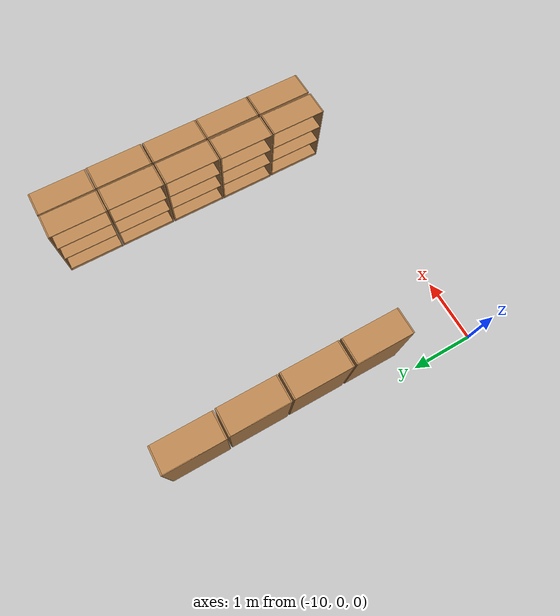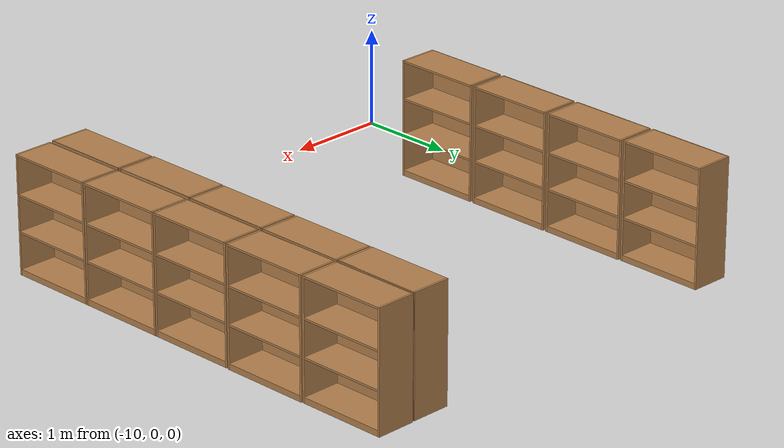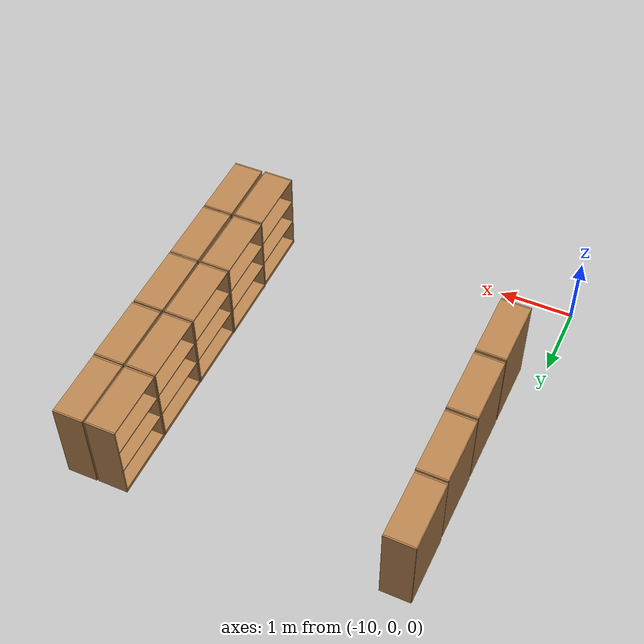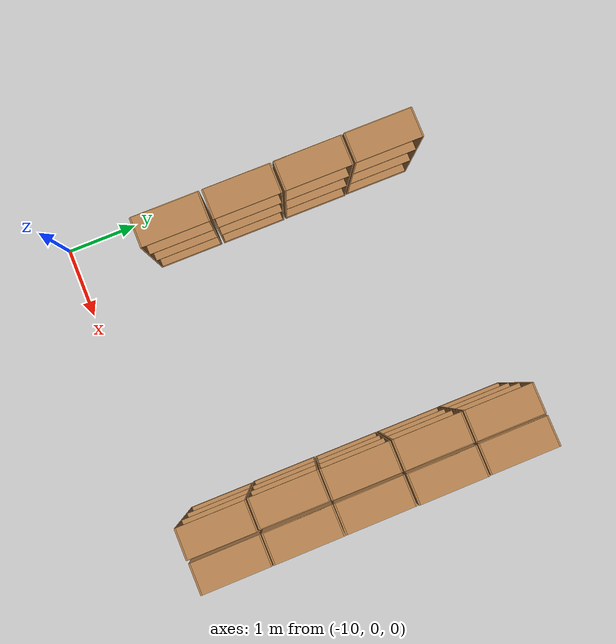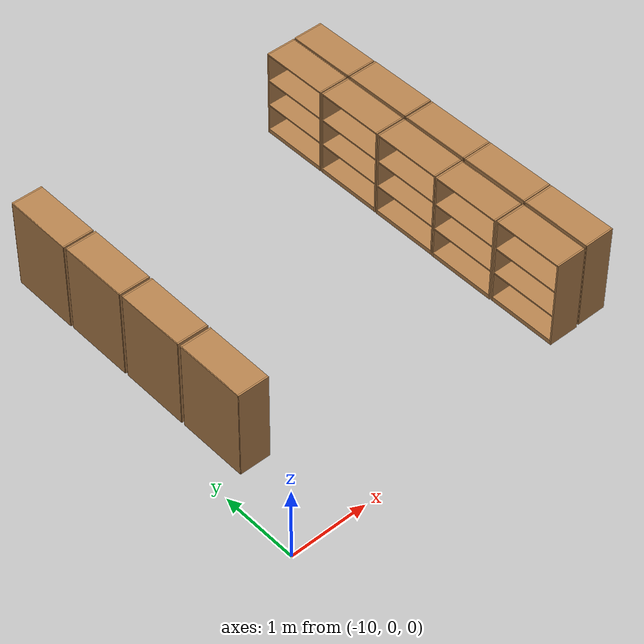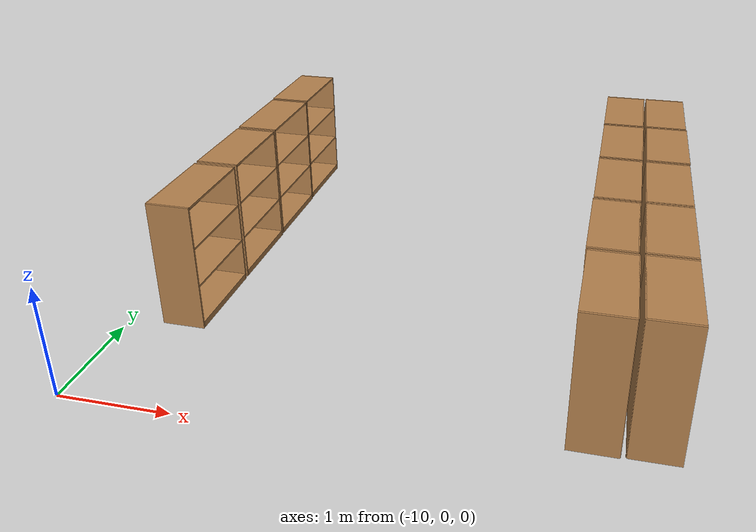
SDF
<sdf version="1.7">
 <world name="default">
  <model name="bookshelf_clone_0_clone_0_clone_clone_3">
   <static>1</static>
   <link name="link">
    <inertial><mass>1</mass></inertial>
    <collision name="back">
     <pose>0 0.005 0.6 0 -0 0</pose>
     <geometry><box><size>0.9 0.01 1.2</size></box></geometry>
    </collision>
    <visual name="visual1">
     <pose>0 0.005 0.6 0 -0 0</pose>
     <geometry><box><size>0.9 0.01 1.2</size></box></geometry>
     <material>
      <script><uri>file://media/materials/scripts/gazebo.material</uri><name>Gazebo/Wood</name></script>
     </material>
    </visual>
    <collision name="left_side">
     <pose>0.45 -0.195 0.6 0 -0 0</pose>
     <geometry><box><size>0.02 0.4 1.2</size></box></geometry>
    </collision>
    <visual name="visual2">
     <pose>0.45 -0.195 0.6 0 -0 0</pose>
     <geometry><box><size>0.02 0.4 1.2</size></box></geometry>
     <material>
      <script><uri>file://media/materials/scripts/gazebo.material</uri><name>Gazebo/Wood</name></script>
     </material>
    </visual>
    <collision name="right_side">
     <pose>-0.45 -0.195 0.6 0 -0 0</pose>
     <geometry><box><size>0.02 0.4 1.2</size></box></geometry>
    </collision>
    <visual name="visual3">
     <pose>-0.45 -0.195 0.6 0 -0 0</pose>
     <geometry><box><size>0.02 0.4 1.2</size></box></geometry>
     <material>
      <script><uri>file://media/materials/scripts/gazebo.material</uri><name>Gazebo/Wood</name></script>
     </material>
    </visual>
    <collision name="bottom">
     <pose>0 -0.195 0.03 0 -0 0</pose>
     <geometry><box><size>0.88 0.4 0.06</size></box></geometry>
    </collision>
    <visual name="visual4">
     <pose>0 -0.195 0.03 0 -0 0</pose>
     <geometry><box><size>0.88 0.4 0.06</size></box></geometry>
     <material>
      <script><uri>file://media/materials/scripts/gazebo.material</uri><name>Gazebo/Wood</name></script>
     </material>
    </visual>
    <collision name="top">
     <pose>0 -0.195 1.19 0 -0 0</pose>
     <geometry><box><size>0.88 0.4 0.02</size></box></geometry>
    </collision>
    <visual name="visual5">
     <pose>0 -0.195 1.19 0 -0 0</pose>
     <geometry><box><size>0.88 0.4 0.02</size></box></geometry>
     <material>
      <script><uri>file://media/materials/scripts/gazebo.material</uri><name>Gazebo/Wood</name></script>
     </material>
    </visual>
    <collision name="low_shelf">
     <pose>0 -0.195 0.43 0 -0 0</pose>
     <geometry><box><size>0.88 0.4 0.02</size></box></geometry>
    </collision>
    <visual name="visual6">
     <pose>0 -0.195 0.43 0 -0 0</pose>
     <geometry><box><size>0.88 0.4 0.02</size></box></geometry>
     <material>
      <script><uri>file://media/materials/scripts/gazebo.material</uri><name>Gazebo/Wood</name></script>
     </material>
    </visual>
    <collision name="high_shelf">
     <pose>0 -0.195 0.8 0 -0 0</pose>
     <geometry><box><size>0.88 0.4 0.02</size></box></geometry>
    </collision>
    <visual name="visual7">
     <pose>0 -0.195 0.8 0 -0 0</pose>
     <geometry><box><size>0.88 0.4 0.02</size></box></geometry>
     <material>
      <script><uri>file://media/materials/scripts/gazebo.material</uri><name>Gazebo/Wood</name></script>
     </material>
    </visual>
   </link>
   <pose>-9.67438 1.61126 0 0 -0 1.56663</pose>
  </model>
  <model name="bookshelf_clone_0_clone_0_clone_clone_4">
   <static>1</static>
   <link name="link">
    <inertial><mass>1</mass></inertial>
    <collision name="back">
     <pose>0 0.005 0.6 0 -0 0</pose>
     <geometry><box><size>0.9 0.01 1.2</size></box></geometry>
    </collision>
    <visual name="visual1">
     <pose>0 0.005 0.6 0 -0 0</pose>
     <geometry><box><size>0.9 0.01 1.2</size></box></geometry>
     <material>
      <script><uri>file://media/materials/scripts/gazebo.material</uri><name>Gazebo/Wood</name></script>
     </material>
    </visual>
    <collision name="left_side">
     <pose>0.45 -0.195 0.6 0 -0 0</pose>
     <geometry><box><size>0.02 0.4 1.2</size></box></geometry>
    </collision>
    <visual name="visual2">
     <pose>0.45 -0.195 0.6 0 -0 0</pose>
     <geometry><box><size>0.02 0.4 1.2</size></box></geometry>
     <material>
      <script><uri>file://media/materials/scripts/gazebo.material</uri><name>Gazebo/Wood</name></script>
     </material>
    </visual>
    <collision name="right_side">
     <pose>-0.45 -0.195 0.6 0 -0 0</pose>
     <geometry><box><size>0.02 0.4 1.2</size></box></geometry>
    </collision>
    <visual name="visual3">
     <pose>-0.45 -0.195 0.6 0 -0 0</pose>
     <geometry><box><size>0.02 0.4 1.2</size></box></geometry>
     <material>
      <script><uri>file://media/materials/scripts/gazebo.material</uri><name>Gazebo/Wood</name></script>
     </material>
    </visual>
    <collision name="bottom">
     <pose>0 -0.195 0.03 0 -0 0</pose>
     <geometry><box><size>0.88 0.4 0.06</size></box></geometry>
    </collision>
    <visual name="visual4">
     <pose>0 -0.195 0.03 0 -0 0</pose>
     <geometry><box><size>0.88 0.4 0.06</size></box></geometry>
     <material>
      <script><uri>file://media/materials/scripts/gazebo.material</uri><name>Gazebo/Wood</name></script>
     </material>
    </visual>
    <collision name="top">
     <pose>0 -0.195 1.19 0 -0 0</pose>
     <geometry><box><size>0.88 0.4 0.02</size></box></geometry>
    </collision>
    <visual name="visual5">
     <pose>0 -0.195 1.19 0 -0 0</pose>
     <geometry><box><size>0.88 0.4 0.02</size></box></geometry>
     <material>
      <script><uri>file://media/materials/scripts/gazebo.material</uri><name>Gazebo/Wood</name></script>
     </material>
    </visual>
    <collision name="low_shelf">
     <pose>0 -0.195 0.43 0 -0 0</pose>
     <geometry><box><size>0.88 0.4 0.02</size></box></geometry>
    </collision>
    <visual name="visual6">
     <pose>0 -0.195 0.43 0 -0 0</pose>
     <geometry><box><size>0.88 0.4 0.02</size></box></geometry>
     <material>
      <script><uri>file://media/materials/scripts/gazebo.material</uri><name>Gazebo/Wood</name></script>
     </material>
    </visual>
    <collision name="high_shelf">
     <pose>0 -0.195 0.8 0 -0 0</pose>
     <geometry><box><size>0.88 0.4 0.02</size></box></geometry>
    </collision>
    <visual name="visual7">
     <pose>0 -0.195 0.8 0 -0 0</pose>
     <geometry><box><size>0.88 0.4 0.02</size></box></geometry>
     <material>
      <script><uri>file://media/materials/scripts/gazebo.material</uri><name>Gazebo/Wood</name></script>
     </material>
    </visual>
   </link>
   <pose>-9.67202 2.56338 0 0 -0 1.56663</pose>
  </model>
  <model name="bookshelf_clone_0_clone_0_clone_clone_5">
   <static>1</static>
   <link name="link">
    <inertial><mass>1</mass></inertial>
    <collision name="back">
     <pose>0 0.005 0.6 0 -0 0</pose>
     <geometry><box><size>0.9 0.01 1.2</size></box></geometry>
    </collision>
    <visual name="visual1">
     <pose>0 0.005 0.6 0 -0 0</pose>
     <geometry><box><size>0.9 0.01 1.2</size></box></geometry>
     <material>
      <script><uri>file://media/materials/scripts/gazebo.material</uri><name>Gazebo/Wood</name></script>
     </material>
    </visual>
    <collision name="left_side">
     <pose>0.45 -0.195 0.6 0 -0 0</pose>
     <geometry><box><size>0.02 0.4 1.2</size></box></geometry>
    </collision>
    <visual name="visual2">
     <pose>0.45 -0.195 0.6 0 -0 0</pose>
     <geometry><box><size>0.02 0.4 1.2</size></box></geometry>
     <material>
      <script><uri>file://media/materials/scripts/gazebo.material</uri><name>Gazebo/Wood</name></script>
     </material>
    </visual>
    <collision name="right_side">
     <pose>-0.45 -0.195 0.6 0 -0 0</pose>
     <geometry><box><size>0.02 0.4 1.2</size></box></geometry>
    </collision>
    <visual name="visual3">
     <pose>-0.45 -0.195 0.6 0 -0 0</pose>
     <geometry><box><size>0.02 0.4 1.2</size></box></geometry>
     <material>
      <script><uri>file://media/materials/scripts/gazebo.material</uri><name>Gazebo/Wood</name></script>
     </material>
    </visual>
    <collision name="bottom">
     <pose>0 -0.195 0.03 0 -0 0</pose>
     <geometry><box><size>0.88 0.4 0.06</size></box></geometry>
    </collision>
    <visual name="visual4">
     <pose>0 -0.195 0.03 0 -0 0</pose>
     <geometry><box><size>0.88 0.4 0.06</size></box></geometry>
     <material>
      <script><uri>file://media/materials/scripts/gazebo.material</uri><name>Gazebo/Wood</name></script>
     </material>
    </visual>
    <collision name="top">
     <pose>0 -0.195 1.19 0 -0 0</pose>
     <geometry><box><size>0.88 0.4 0.02</size></box></geometry>
    </collision>
    <visual name="visual5">
     <pose>0 -0.195 1.19 0 -0 0</pose>
     <geometry><box><size>0.88 0.4 0.02</size></box></geometry>
     <material>
      <script><uri>file://media/materials/scripts/gazebo.material</uri><name>Gazebo/Wood</name></script>
     </material>
    </visual>
    <collision name="low_shelf">
     <pose>0 -0.195 0.43 0 -0 0</pose>
     <geometry><box><size>0.88 0.4 0.02</size></box></geometry>
    </collision>
    <visual name="visual6">
     <pose>0 -0.195 0.43 0 -0 0</pose>
     <geometry><box><size>0.88 0.4 0.02</size></box></geometry>
     <material>
      <script><uri>file://media/materials/scripts/gazebo.material</uri><name>Gazebo/Wood</name></script>
     </material>
    </visual>
    <collision name="high_shelf">
     <pose>0 -0.195 0.8 0 -0 0</pose>
     <geometry><box><size>0.88 0.4 0.02</size></box></geometry>
    </collision>
    <visual name="visual7">
     <pose>0 -0.195 0.8 0 -0 0</pose>
     <geometry><box><size>0.88 0.4 0.02</size></box></geometry>
     <material>
      <script><uri>file://media/materials/scripts/gazebo.material</uri><name>Gazebo/Wood</name></script>
     </material>
    </visual>
   </link>
   <pose>-9.67305 3.51023 0 0 -0 1.56663</pose>
  </model>
  <model name="bookshelf_clone_0_clone_0_clone_clone_6">
   <static>1</static>
   <link name="link">
    <inertial><mass>1</mass></inertial>
    <collision name="back">
     <pose>0 0.005 0.6 0 -0 0</pose>
     <geometry><box><size>0.9 0.01 1.2</size></box></geometry>
    </collision>
    <visual name="visual1">
     <pose>0 0.005 0.6 0 -0 0</pose>
     <geometry><box><size>0.9 0.01 1.2</size></box></geometry>
     <material>
      <script><uri>file://media/materials/scripts/gazebo.material</uri><name>Gazebo/Wood</name></script>
     </material>
    </visual>
    <collision name="left_side">
     <pose>0.45 -0.195 0.6 0 -0 0</pose>
     <geometry><box><size>0.02 0.4 1.2</size></box></geometry>
    </collision>
    <visual name="visual2">
     <pose>0.45 -0.195 0.6 0 -0 0</pose>
     <geometry><box><size>0.02 0.4 1.2</size></box></geometry>
     <material>
      <script><uri>file://media/materials/scripts/gazebo.material</uri><name>Gazebo/Wood</name></script>
     </material>
    </visual>
    <collision name="right_side">
     <pose>-0.45 -0.195 0.6 0 -0 0</pose>
     <geometry><box><size>0.02 0.4 1.2</size></box></geometry>
    </collision>
    <visual name="visual3">
     <pose>-0.45 -0.195 0.6 0 -0 0</pose>
     <geometry><box><size>0.02 0.4 1.2</size></box></geometry>
     <material>
      <script><uri>file://media/materials/scripts/gazebo.material</uri><name>Gazebo/Wood</name></script>
     </material>
    </visual>
    <collision name="bottom">
     <pose>0 -0.195 0.03 0 -0 0</pose>
     <geometry><box><size>0.88 0.4 0.06</size></box></geometry>
    </collision>
    <visual name="visual4">
     <pose>0 -0.195 0.03 0 -0 0</pose>
     <geometry><box><size>0.88 0.4 0.06</size></box></geometry>
     <material>
      <script><uri>file://media/materials/scripts/gazebo.material</uri><name>Gazebo/Wood</name></script>
     </material>
    </visual>
    <collision name="top">
     <pose>0 -0.195 1.19 0 -0 0</pose>
     <geometry><box><size>0.88 0.4 0.02</size></box></geometry>
    </collision>
    <visual name="visual5">
     <pose>0 -0.195 1.19 0 -0 0</pose>
     <geometry><box><size>0.88 0.4 0.02</size></box></geometry>
     <material>
      <script><uri>file://media/materials/scripts/gazebo.material</uri><name>Gazebo/Wood</name></script>
     </material>
    </visual>
    <collision name="low_shelf">
     <pose>0 -0.195 0.43 0 -0 0</pose>
     <geometry><box><size>0.88 0.4 0.02</size></box></geometry>
    </collision>
    <visual name="visual6">
     <pose>0 -0.195 0.43 0 -0 0</pose>
     <geometry><box><size>0.88 0.4 0.02</size></box></geometry>
     <material>
      <script><uri>file://media/materials/scripts/gazebo.material</uri><name>Gazebo/Wood</name></script>
     </material>
    </visual>
    <collision name="high_shelf">
     <pose>0 -0.195 0.8 0 -0 0</pose>
     <geometry><box><size>0.88 0.4 0.02</size></box></geometry>
    </collision>
    <visual name="visual7">
     <pose>0 -0.195 0.8 0 -0 0</pose>
     <geometry><box><size>0.88 0.4 0.02</size></box></geometry>
     <material>
      <script><uri>file://media/materials/scripts/gazebo.material</uri><name>Gazebo/Wood</name></script>
     </material>
    </visual>
   </link>
   <pose>-9.67749 4.45208 0 0 -0 1.56663</pose>
  </model>
  <model name="bookshelf_clone_2_clone_1">
   <static>1</static>
   <link name="link">
    <inertial><mass>1</mass></inertial>
    <collision name="back">
     <pose>0 0.005 0.6 0 -0 0</pose>
     <geometry><box><size>0.9 0.01 1.2</size></box></geometry>
    </collision>
    <visual name="visual1">
     <pose>0 0.005 0.6 0 -0 0</pose>
     <geometry><box><size>0.9 0.01 1.2</size></box></geometry>
     <material>
      <script><uri>file://media/materials/scripts/gazebo.material</uri><name>Gazebo/Wood</name></script>
     </material>
    </visual>
    <collision name="left_side">
     <pose>0.45 -0.195 0.6 0 -0 0</pose>
     <geometry><box><size>0.02 0.4 1.2</size></box></geometry>
    </collision>
    <visual name="visual2">
     <pose>0.45 -0.195 0.6 0 -0 0</pose>
     <geometry><box><size>0.02 0.4 1.2</size></box></geometry>
     <material>
      <script><uri>file://media/materials/scripts/gazebo.material</uri><name>Gazebo/Wood</name></script>
     </material>
    </visual>
    <collision name="right_side">
     <pose>-0.45 -0.195 0.6 0 -0 0</pose>
     <geometry><box><size>0.02 0.4 1.2</size></box></geometry>
    </collision>
    <visual name="visual3">
     <pose>-0.45 -0.195 0.6 0 -0 0</pose>
     <geometry><box><size>0.02 0.4 1.2</size></box></geometry>
     <material>
      <script><uri>file://media/materials/scripts/gazebo.material</uri><name>Gazebo/Wood</name></script>
     </material>
    </visual>
    <collision name="bottom">
     <pose>0 -0.195 0.03 0 -0 0</pose>
     <geometry><box><size>0.88 0.4 0.06</size></box></geometry>
    </collision>
    <visual name="visual4">
     <pose>0 -0.195 0.03 0 -0 0</pose>
     <geometry><box><size>0.88 0.4 0.06</size></box></geometry>
     <material>
      <script><uri>file://media/materials/scripts/gazebo.material</uri><name>Gazebo/Wood</name></script>
     </material>
    </visual>
    <collision name="top">
     <pose>0 -0.195 1.19 0 -0 0</pose>
     <geometry><box><size>0.88 0.4 0.02</size></box></geometry>
    </collision>
    <visual name="visual5">
     <pose>0 -0.195 1.19 0 -0 0</pose>
     <geometry><box><size>0.88 0.4 0.02</size></box></geometry>
     <material>
      <script><uri>file://media/materials/scripts/gazebo.material</uri><name>Gazebo/Wood</name></script>
     </material>
    </visual>
    <collision name="low_shelf">
     <pose>0 -0.195 0.43 0 -0 0</pose>
     <geometry><box><size>0.88 0.4 0.02</size></box></geometry>
    </collision>
    <visual name="visual6">
     <pose>0 -0.195 0.43 0 -0 0</pose>
     <geometry><box><size>0.88 0.4 0.02</size></box></geometry>
     <material>
      <script><uri>file://media/materials/scripts/gazebo.material</uri><name>Gazebo/Wood</name></script>
     </material>
    </visual>
    <collision name="high_shelf">
     <pose>0 -0.195 0.8 0 -0 0</pose>
     <geometry><box><size>0.88 0.4 0.02</size></box></geometry>
    </collision>
    <visual name="visual7">
     <pose>0 -0.195 0.8 0 -0 0</pose>
     <geometry><box><size>0.88 0.4 0.02</size></box></geometry>
     <material>
      <script><uri>file://media/materials/scripts/gazebo.material</uri><name>Gazebo/Wood</name></script>
     </material>
    </visual>
   </link>
   <pose>-5.58759 0.767929 0 0 0 -1.57136</pose>
  </model>
  <model name="bookshelf_clone_2_clone_2">
   <static>1</static>
   <link name="link">
    <inertial><mass>1</mass></inertial>
    <collision name="back">
     <pose>0 0.005 0.6 0 -0 0</pose>
     <geometry><box><size>0.9 0.01 1.2</size></box></geometry>
    </collision>
    <visual name="visual1">
     <pose>0 0.005 0.6 0 -0 0</pose>
     <geometry><box><size>0.9 0.01 1.2</size></box></geometry>
     <material>
      <script><uri>file://media/materials/scripts/gazebo.material</uri><name>Gazebo/Wood</name></script>
     </material>
    </visual>
    <collision name="left_side">
     <pose>0.45 -0.195 0.6 0 -0 0</pose>
     <geometry><box><size>0.02 0.4 1.2</size></box></geometry>
    </collision>
    <visual name="visual2">
     <pose>0.45 -0.195 0.6 0 -0 0</pose>
     <geometry><box><size>0.02 0.4 1.2</size></box></geometry>
     <material>
      <script><uri>file://media/materials/scripts/gazebo.material</uri><name>Gazebo/Wood</name></script>
     </material>
    </visual>
    <collision name="right_side">
     <pose>-0.45 -0.195 0.6 0 -0 0</pose>
     <geometry><box><size>0.02 0.4 1.2</size></box></geometry>
    </collision>
    <visual name="visual3">
     <pose>-0.45 -0.195 0.6 0 -0 0</pose>
     <geometry><box><size>0.02 0.4 1.2</size></box></geometry>
     <material>
      <script><uri>file://media/materials/scripts/gazebo.material</uri><name>Gazebo/Wood</name></script>
     </material>
    </visual>
    <collision name="bottom">
     <pose>0 -0.195 0.03 0 -0 0</pose>
     <geometry><box><size>0.88 0.4 0.06</size></box></geometry>
    </collision>
    <visual name="visual4">
     <pose>0 -0.195 0.03 0 -0 0</pose>
     <geometry><box><size>0.88 0.4 0.06</size></box></geometry>
     <material>
      <script><uri>file://media/materials/scripts/gazebo.material</uri><name>Gazebo/Wood</name></script>
     </material>
    </visual>
    <collision name="top">
     <pose>0 -0.195 1.19 0 -0 0</pose>
     <geometry><box><size>0.88 0.4 0.02</size></box></geometry>
    </collision>
    <visual name="visual5">
     <pose>0 -0.195 1.19 0 -0 0</pose>
     <geometry><box><size>0.88 0.4 0.02</size></box></geometry>
     <material>
      <script><uri>file://media/materials/scripts/gazebo.material</uri><name>Gazebo/Wood</name></script>
     </material>
    </visual>
    <collision name="low_shelf">
     <pose>0 -0.195 0.43 0 -0 0</pose>
     <geometry><box><size>0.88 0.4 0.02</size></box></geometry>
    </collision>
    <visual name="visual6">
     <pose>0 -0.195 0.43 0 -0 0</pose>
     <geometry><box><size>0.88 0.4 0.02</size></box></geometry>
     <material>
      <script><uri>file://media/materials/scripts/gazebo.material</uri><name>Gazebo/Wood</name></script>
     </material>
    </visual>
    <collision name="high_shelf">
     <pose>0 -0.195 0.8 0 -0 0</pose>
     <geometry><box><size>0.88 0.4 0.02</size></box></geometry>
    </collision>
    <visual name="visual7">
     <pose>0 -0.195 0.8 0 -0 0</pose>
     <geometry><box><size>0.88 0.4 0.02</size></box></geometry>
     <material>
      <script><uri>file://media/materials/scripts/gazebo.material</uri><name>Gazebo/Wood</name></script>
     </material>
    </visual>
   </link>
   <pose>-5.59613 1.70228 0 0 0 -1.57136</pose>
  </model>
  <model name="bookshelf_clone_2_clone_3">
   <static>1</static>
   <link name="link">
    <inertial><mass>1</mass></inertial>
    <collision name="back">
     <pose>0 0.005 0.6 0 -0 0</pose>
     <geometry><box><size>0.9 0.01 1.2</size></box></geometry>
    </collision>
    <visual name="visual1">
     <pose>0 0.005 0.6 0 -0 0</pose>
     <geometry><box><size>0.9 0.01 1.2</size></box></geometry>
     <material>
      <script><uri>file://media/materials/scripts/gazebo.material</uri><name>Gazebo/Wood</name></script>
     </material>
    </visual>
    <collision name="left_side">
     <pose>0.45 -0.195 0.6 0 -0 0</pose>
     <geometry><box><size>0.02 0.4 1.2</size></box></geometry>
    </collision>
    <visual name="visual2">
     <pose>0.45 -0.195 0.6 0 -0 0</pose>
     <geometry><box><size>0.02 0.4 1.2</size></box></geometry>
     <material>
      <script><uri>file://media/materials/scripts/gazebo.material</uri><name>Gazebo/Wood</name></script>
     </material>
    </visual>
    <collision name="right_side">
     <pose>-0.45 -0.195 0.6 0 -0 0</pose>
     <geometry><box><size>0.02 0.4 1.2</size></box></geometry>
    </collision>
    <visual name="visual3">
     <pose>-0.45 -0.195 0.6 0 -0 0</pose>
     <geometry><box><size>0.02 0.4 1.2</size></box></geometry>
     <material>
      <script><uri>file://media/materials/scripts/gazebo.material</uri><name>Gazebo/Wood</name></script>
     </material>
    </visual>
    <collision name="bottom">
     <pose>0 -0.195 0.03 0 -0 0</pose>
     <geometry><box><size>0.88 0.4 0.06</size></box></geometry>
    </collision>
    <visual name="visual4">
     <pose>0 -0.195 0.03 0 -0 0</pose>
     <geometry><box><size>0.88 0.4 0.06</size></box></geometry>
     <material>
      <script><uri>file://media/materials/scripts/gazebo.material</uri><name>Gazebo/Wood</name></script>
     </material>
    </visual>
    <collision name="top">
     <pose>0 -0.195 1.19 0 -0 0</pose>
     <geometry><box><size>0.88 0.4 0.02</size></box></geometry>
    </collision>
    <visual name="visual5">
     <pose>0 -0.195 1.19 0 -0 0</pose>
     <geometry><box><size>0.88 0.4 0.02</size></box></geometry>
     <material>
      <script><uri>file://media/materials/scripts/gazebo.material</uri><name>Gazebo/Wood</name></script>
     </material>
    </visual>
    <collision name="low_shelf">
     <pose>0 -0.195 0.43 0 -0 0</pose>
     <geometry><box><size>0.88 0.4 0.02</size></box></geometry>
    </collision>
    <visual name="visual6">
     <pose>0 -0.195 0.43 0 -0 0</pose>
     <geometry><box><size>0.88 0.4 0.02</size></box></geometry>
     <material>
      <script><uri>file://media/materials/scripts/gazebo.material</uri><name>Gazebo/Wood</name></script>
     </material>
    </visual>
    <collision name="high_shelf">
     <pose>0 -0.195 0.8 0 -0 0</pose>
     <geometry><box><size>0.88 0.4 0.02</size></box></geometry>
    </collision>
    <visual name="visual7">
     <pose>0 -0.195 0.8 0 -0 0</pose>
     <geometry><box><size>0.88 0.4 0.02</size></box></geometry>
     <material>
      <script><uri>file://media/materials/scripts/gazebo.material</uri><name>Gazebo/Wood</name></script>
     </material>
    </visual>
   </link>
   <pose>-5.5909 2.63343 0 0 0 -1.57136</pose>
  </model>
  <model name="bookshelf_clone_2_clone_4">
   <static>1</static>
   <link name="link">
    <inertial><mass>1</mass></inertial>
    <collision name="back">
     <pose>0 0.005 0.6 0 -0 0</pose>
     <geometry><box><size>0.9 0.01 1.2</size></box></geometry>
    </collision>
    <visual name="visual1">
     <pose>0 0.005 0.6 0 -0 0</pose>
     <geometry><box><size>0.9 0.01 1.2</size></box></geometry>
     <material>
      <script><uri>file://media/materials/scripts/gazebo.material</uri><name>Gazebo/Wood</name></script>
     </material>
    </visual>
    <collision name="left_side">
     <pose>0.45 -0.195 0.6 0 -0 0</pose>
     <geometry><box><size>0.02 0.4 1.2</size></box></geometry>
    </collision>
    <visual name="visual2">
     <pose>0.45 -0.195 0.6 0 -0 0</pose>
     <geometry><box><size>0.02 0.4 1.2</size></box></geometry>
     <material>
      <script><uri>file://media/materials/scripts/gazebo.material</uri><name>Gazebo/Wood</name></script>
     </material>
    </visual>
    <collision name="right_side">
     <pose>-0.45 -0.195 0.6 0 -0 0</pose>
     <geometry><box><size>0.02 0.4 1.2</size></box></geometry>
    </collision>
    <visual name="visual3">
     <pose>-0.45 -0.195 0.6 0 -0 0</pose>
     <geometry><box><size>0.02 0.4 1.2</size></box></geometry>
     <material>
      <script><uri>file://media/materials/scripts/gazebo.material</uri><name>Gazebo/Wood</name></script>
     </material>
    </visual>
    <collision name="bottom">
     <pose>0 -0.195 0.03 0 -0 0</pose>
     <geometry><box><size>0.88 0.4 0.06</size></box></geometry>
    </collision>
    <visual name="visual4">
     <pose>0 -0.195 0.03 0 -0 0</pose>
     <geometry><box><size>0.88 0.4 0.06</size></box></geometry>
     <material>
      <script><uri>file://media/materials/scripts/gazebo.material</uri><name>Gazebo/Wood</name></script>
     </material>
    </visual>
    <collision name="top">
     <pose>0 -0.195 1.19 0 -0 0</pose>
     <geometry><box><size>0.88 0.4 0.02</size></box></geometry>
    </collision>
    <visual name="visual5">
     <pose>0 -0.195 1.19 0 -0 0</pose>
     <geometry><box><size>0.88 0.4 0.02</size></box></geometry>
     <material>
      <script><uri>file://media/materials/scripts/gazebo.material</uri><name>Gazebo/Wood</name></script>
     </material>
    </visual>
    <collision name="low_shelf">
     <pose>0 -0.195 0.43 0 -0 0</pose>
     <geometry><box><size>0.88 0.4 0.02</size></box></geometry>
    </collision>
    <visual name="visual6">
     <pose>0 -0.195 0.43 0 -0 0</pose>
     <geometry><box><size>0.88 0.4 0.02</size></box></geometry>
     <material>
      <script><uri>file://media/materials/scripts/gazebo.material</uri><name>Gazebo/Wood</name></script>
     </material>
    </visual>
    <collision name="high_shelf">
     <pose>0 -0.195 0.8 0 -0 0</pose>
     <geometry><box><size>0.88 0.4 0.02</size></box></geometry>
    </collision>
    <visual name="visual7">
     <pose>0 -0.195 0.8 0 -0 0</pose>
     <geometry><box><size>0.88 0.4 0.02</size></box></geometry>
     <material>
      <script><uri>file://media/materials/scripts/gazebo.material</uri><name>Gazebo/Wood</name></script>
     </material>
    </visual>
   </link>
   <pose>-5.58889 3.56813 0 0 0 -1.57136</pose>
  </model>
  <model name="bookshelf_clone_2_clone_5">
   <static>1</static>
   <link name="link">
    <inertial><mass>1</mass></inertial>
    <collision name="back">
     <pose>0 0.005 0.6 0 -0 0</pose>
     <geometry><box><size>0.9 0.01 1.2</size></box></geometry>
    </collision>
    <visual name="visual1">
     <pose>0 0.005 0.6 0 -0 0</pose>
     <geometry><box><size>0.9 0.01 1.2</size></box></geometry>
     <material>
      <script><uri>file://media/materials/scripts/gazebo.material</uri><name>Gazebo/Wood</name></script>
     </material>
    </visual>
    <collision name="left_side">
     <pose>0.45 -0.195 0.6 0 -0 0</pose>
     <geometry><box><size>0.02 0.4 1.2</size></box></geometry>
    </collision>
    <visual name="visual2">
     <pose>0.45 -0.195 0.6 0 -0 0</pose>
     <geometry><box><size>0.02 0.4 1.2</size></box></geometry>
     <material>
      <script><uri>file://media/materials/scripts/gazebo.material</uri><name>Gazebo/Wood</name></script>
     </material>
    </visual>
    <collision name="right_side">
     <pose>-0.45 -0.195 0.6 0 -0 0</pose>
     <geometry><box><size>0.02 0.4 1.2</size></box></geometry>
    </collision>
    <visual name="visual3">
     <pose>-0.45 -0.195 0.6 0 -0 0</pose>
     <geometry><box><size>0.02 0.4 1.2</size></box></geometry>
     <material>
      <script><uri>file://media/materials/scripts/gazebo.material</uri><name>Gazebo/Wood</name></script>
     </material>
    </visual>
    <collision name="bottom">
     <pose>0 -0.195 0.03 0 -0 0</pose>
     <geometry><box><size>0.88 0.4 0.06</size></box></geometry>
    </collision>
    <visual name="visual4">
     <pose>0 -0.195 0.03 0 -0 0</pose>
     <geometry><box><size>0.88 0.4 0.06</size></box></geometry>
     <material>
      <script><uri>file://media/materials/scripts/gazebo.material</uri><name>Gazebo/Wood</name></script>
     </material>
    </visual>
    <collision name="top">
     <pose>0 -0.195 1.19 0 -0 0</pose>
     <geometry><box><size>0.88 0.4 0.02</size></box></geometry>
    </collision>
    <visual name="visual5">
     <pose>0 -0.195 1.19 0 -0 0</pose>
     <geometry><box><size>0.88 0.4 0.02</size></box></geometry>
     <material>
      <script><uri>file://media/materials/scripts/gazebo.material</uri><name>Gazebo/Wood</name></script>
     </material>
    </visual>
    <collision name="low_shelf">
     <pose>0 -0.195 0.43 0 -0 0</pose>
     <geometry><box><size>0.88 0.4 0.02</size></box></geometry>
    </collision>
    <visual name="visual6">
     <pose>0 -0.195 0.43 0 -0 0</pose>
     <geometry><box><size>0.88 0.4 0.02</size></box></geometry>
     <material>
      <script><uri>file://media/materials/scripts/gazebo.material</uri><name>Gazebo/Wood</name></script>
     </material>
    </visual>
    <collision name="high_shelf">
     <pose>0 -0.195 0.8 0 -0 0</pose>
     <geometry><box><size>0.88 0.4 0.02</size></box></geometry>
    </collision>
    <visual name="visual7">
     <pose>0 -0.195 0.8 0 -0 0</pose>
     <geometry><box><size>0.88 0.4 0.02</size></box></geometry>
     <material>
      <script><uri>file://media/materials/scripts/gazebo.material</uri><name>Gazebo/Wood</name></script>
     </material>
    </visual>
   </link>
   <pose>-5.59025 4.50065 0 0 0 -1.57136</pose>
  </model>
  <model name="bookshelf_clone_2_clone_clone_0">
   <static>1</static>
   <link name="link">
    <inertial><mass>1</mass></inertial>
    <collision name="back">
     <pose>0 0.005 0.6 0 -0 0</pose>
     <geometry><box><size>0.9 0.01 1.2</size></box></geometry>
    </collision>
    <visual name="visual1">
     <pose>0 0.005 0.6 0 -0 0</pose>
     <geometry><box><size>0.9 0.01 1.2</size></box></geometry>
     <material>
      <script><uri>file://media/materials/scripts/gazebo.material</uri><name>Gazebo/Wood</name></script>
     </material>
    </visual>
    <collision name="left_side">
     <pose>0.45 -0.195 0.6 0 -0 0</pose>
     <geometry><box><size>0.02 0.4 1.2</size></box></geometry>
    </collision>
    <visual name="visual2">
     <pose>0.45 -0.195 0.6 0 -0 0</pose>
     <geometry><box><size>0.02 0.4 1.2</size></box></geometry>
     <material>
      <script><uri>file://media/materials/scripts/gazebo.material</uri><name>Gazebo/Wood</name></script>
     </material>
    </visual>
    <collision name="right_side">
     <pose>-0.45 -0.195 0.6 0 -0 0</pose>
     <geometry><box><size>0.02 0.4 1.2</size></box></geometry>
    </collision>
    <visual name="visual3">
     <pose>-0.45 -0.195 0.6 0 -0 0</pose>
     <geometry><box><size>0.02 0.4 1.2</size></box></geometry>
     <material>
      <script><uri>file://media/materials/scripts/gazebo.material</uri><name>Gazebo/Wood</name></script>
     </material>
    </visual>
    <collision name="bottom">
     <pose>0 -0.195 0.03 0 -0 0</pose>
     <geometry><box><size>0.88 0.4 0.06</size></box></geometry>
    </collision>
    <visual name="visual4">
     <pose>0 -0.195 0.03 0 -0 0</pose>
     <geometry><box><size>0.88 0.4 0.06</size></box></geometry>
     <material>
      <script><uri>file://media/materials/scripts/gazebo.material</uri><name>Gazebo/Wood</name></script>
     </material>
    </visual>
    <collision name="top">
     <pose>0 -0.195 1.19 0 -0 0</pose>
     <geometry><box><size>0.88 0.4 0.02</size></box></geometry>
    </collision>
    <visual name="visual5">
     <pose>0 -0.195 1.19 0 -0 0</pose>
     <geometry><box><size>0.88 0.4 0.02</size></box></geometry>
     <material>
      <script><uri>file://media/materials/scripts/gazebo.material</uri><name>Gazebo/Wood</name></script>
     </material>
    </visual>
    <collision name="low_shelf">
     <pose>0 -0.195 0.43 0 -0 0</pose>
     <geometry><box><size>0.88 0.4 0.02</size></box></geometry>
    </collision>
    <visual name="visual6">
     <pose>0 -0.195 0.43 0 -0 0</pose>
     <geometry><box><size>0.88 0.4 0.02</size></box></geometry>
     <material>
      <script><uri>file://media/materials/scripts/gazebo.material</uri><name>Gazebo/Wood</name></script>
     </material>
    </visual>
    <collision name="high_shelf">
     <pose>0 -0.195 0.8 0 -0 0</pose>
     <geometry><box><size>0.88 0.4 0.02</size></box></geometry>
    </collision>
    <visual name="visual7">
     <pose>0 -0.195 0.8 0 -0 0</pose>
     <geometry><box><size>0.88 0.4 0.02</size></box></geometry>
     <material>
      <script><uri>file://media/materials/scripts/gazebo.material</uri><name>Gazebo/Wood</name></script>
     </material>
    </visual>
   </link>
   <pose>-5.53475 0.780497 0 0 -0 1.57553</pose>
  </model>
  <model name="bookshelf_clone_2_clone_clone_0_clone">
   <static>1</static>
   <link name="link">
    <inertial><mass>1</mass></inertial>
    <collision name="back">
     <pose>0 0.005 0.6 0 -0 0</pose>
     <geometry><box><size>0.9 0.01 1.2</size></box></geometry>
    </collision>
    <visual name="visual1">
     <pose>0 0.005 0.6 0 -0 0</pose>
     <geometry><box><size>0.9 0.01 1.2</size></box></geometry>
     <material>
      <script><uri>file://media/materials/scripts/gazebo.material</uri><name>Gazebo/Wood</name></script>
     </material>
    </visual>
    <collision name="left_side">
     <pose>0.45 -0.195 0.6 0 -0 0</pose>
     <geometry><box><size>0.02 0.4 1.2</size></box></geometry>
    </collision>
    <visual name="visual2">
     <pose>0.45 -0.195 0.6 0 -0 0</pose>
     <geometry><box><size>0.02 0.4 1.2</size></box></geometry>
     <material>
      <script><uri>file://media/materials/scripts/gazebo.material</uri><name>Gazebo/Wood</name></script>
     </material>
    </visual>
    <collision name="right_side">
     <pose>-0.45 -0.195 0.6 0 -0 0</pose>
     <geometry><box><size>0.02 0.4 1.2</size></box></geometry>
    </collision>
    <visual name="visual3">
     <pose>-0.45 -0.195 0.6 0 -0 0</pose>
     <geometry><box><size>0.02 0.4 1.2</size></box></geometry>
     <material>
      <script><uri>file://media/materials/scripts/gazebo.material</uri><name>Gazebo/Wood</name></script>
     </material>
    </visual>
    <collision name="bottom">
     <pose>0 -0.195 0.03 0 -0 0</pose>
     <geometry><box><size>0.88 0.4 0.06</size></box></geometry>
    </collision>
    <visual name="visual4">
     <pose>0 -0.195 0.03 0 -0 0</pose>
     <geometry><box><size>0.88 0.4 0.06</size></box></geometry>
     <material>
      <script><uri>file://media/materials/scripts/gazebo.material</uri><name>Gazebo/Wood</name></script>
     </material>
    </visual>
    <collision name="top">
     <pose>0 -0.195 1.19 0 -0 0</pose>
     <geometry><box><size>0.88 0.4 0.02</size></box></geometry>
    </collision>
    <visual name="visual5">
     <pose>0 -0.195 1.19 0 -0 0</pose>
     <geometry><box><size>0.88 0.4 0.02</size></box></geometry>
     <material>
      <script><uri>file://media/materials/scripts/gazebo.material</uri><name>Gazebo/Wood</name></script>
     </material>
    </visual>
    <collision name="low_shelf">
     <pose>0 -0.195 0.43 0 -0 0</pose>
     <geometry><box><size>0.88 0.4 0.02</size></box></geometry>
    </collision>
    <visual name="visual6">
     <pose>0 -0.195 0.43 0 -0 0</pose>
     <geometry><box><size>0.88 0.4 0.02</size></box></geometry>
     <material>
      <script><uri>file://media/materials/scripts/gazebo.material</uri><name>Gazebo/Wood</name></script>
     </material>
    </visual>
    <collision name="high_shelf">
     <pose>0 -0.195 0.8 0 -0 0</pose>
     <geometry><box><size>0.88 0.4 0.02</size></box></geometry>
    </collision>
    <visual name="visual7">
     <pose>0 -0.195 0.8 0 -0 0</pose>
     <geometry><box><size>0.88 0.4 0.02</size></box></geometry>
     <material>
      <script><uri>file://media/materials/scripts/gazebo.material</uri><name>Gazebo/Wood</name></script>
     </material>
    </visual>
   </link>
   <pose>-5.53857 1.70981 0 0 -0 1.57553</pose>
  </model>
  <model name="bookshelf_clone_2_clone_clone_0_clone_0">
   <static>1</static>
   <link name="link">
    <inertial><mass>1</mass></inertial>
    <collision name="back">
     <pose>0 0.005 0.6 0 -0 0</pose>
     <geometry><box><size>0.9 0.01 1.2</size></box></geometry>
    </collision>
    <visual name="visual1">
     <pose>0 0.005 0.6 0 -0 0</pose>
     <geometry><box><size>0.9 0.01 1.2</size></box></geometry>
     <material>
      <script><uri>file://media/materials/scripts/gazebo.material</uri><name>Gazebo/Wood</name></script>
     </material>
    </visual>
    <collision name="left_side">
     <pose>0.45 -0.195 0.6 0 -0 0</pose>
     <geometry><box><size>0.02 0.4 1.2</size></box></geometry>
    </collision>
    <visual name="visual2">
     <pose>0.45 -0.195 0.6 0 -0 0</pose>
     <geometry><box><size>0.02 0.4 1.2</size></box></geometry>
     <material>
      <script><uri>file://media/materials/scripts/gazebo.material</uri><name>Gazebo/Wood</name></script>
     </material>
    </visual>
    <collision name="right_side">
     <pose>-0.45 -0.195 0.6 0 -0 0</pose>
     <geometry><box><size>0.02 0.4 1.2</size></box></geometry>
    </collision>
    <visual name="visual3">
     <pose>-0.45 -0.195 0.6 0 -0 0</pose>
     <geometry><box><size>0.02 0.4 1.2</size></box></geometry>
     <material>
      <script><uri>file://media/materials/scripts/gazebo.material</uri><name>Gazebo/Wood</name></script>
     </material>
    </visual>
    <collision name="bottom">
     <pose>0 -0.195 0.03 0 -0 0</pose>
     <geometry><box><size>0.88 0.4 0.06</size></box></geometry>
    </collision>
    <visual name="visual4">
     <pose>0 -0.195 0.03 0 -0 0</pose>
     <geometry><box><size>0.88 0.4 0.06</size></box></geometry>
     <material>
      <script><uri>file://media/materials/scripts/gazebo.material</uri><name>Gazebo/Wood</name></script>
     </material>
    </visual>
    <collision name="top">
     <pose>0 -0.195 1.19 0 -0 0</pose>
     <geometry><box><size>0.88 0.4 0.02</size></box></geometry>
    </collision>
    <visual name="visual5">
     <pose>0 -0.195 1.19 0 -0 0</pose>
     <geometry><box><size>0.88 0.4 0.02</size></box></geometry>
     <material>
      <script><uri>file://media/materials/scripts/gazebo.material</uri><name>Gazebo/Wood</name></script>
     </material>
    </visual>
    <collision name="low_shelf">
     <pose>0 -0.195 0.43 0 -0 0</pose>
     <geometry><box><size>0.88 0.4 0.02</size></box></geometry>
    </collision>
    <visual name="visual6">
     <pose>0 -0.195 0.43 0 -0 0</pose>
     <geometry><box><size>0.88 0.4 0.02</size></box></geometry>
     <material>
      <script><uri>file://media/materials/scripts/gazebo.material</uri><name>Gazebo/Wood</name></script>
     </material>
    </visual>
    <collision name="high_shelf">
     <pose>0 -0.195 0.8 0 -0 0</pose>
     <geometry><box><size>0.88 0.4 0.02</size></box></geometry>
    </collision>
    <visual name="visual7">
     <pose>0 -0.195 0.8 0 -0 0</pose>
     <geometry><box><size>0.88 0.4 0.02</size></box></geometry>
     <material>
      <script><uri>file://media/materials/scripts/gazebo.material</uri><name>Gazebo/Wood</name></script>
     </material>
    </visual>
   </link>
   <pose>-5.54327 2.63665 0 0 -0 1.57553</pose>
  </model>
  <model name="bookshelf_clone_2_clone_clone_0_clone_1">
   <static>1</static>
   <link name="link">
    <inertial><mass>1</mass></inertial>
    <collision name="back">
     <pose>0 0.005 0.6 0 -0 0</pose>
     <geometry><box><size>0.9 0.01 1.2</size></box></geometry>
    </collision>
    <visual name="visual1">
     <pose>0 0.005 0.6 0 -0 0</pose>
     <geometry><box><size>0.9 0.01 1.2</size></box></geometry>
     <material>
      <script><uri>file://media/materials/scripts/gazebo.material</uri><name>Gazebo/Wood</name></script>
     </material>
    </visual>
    <collision name="left_side">
     <pose>0.45 -0.195 0.6 0 -0 0</pose>
     <geometry><box><size>0.02 0.4 1.2</size></box></geometry>
    </collision>
    <visual name="visual2">
     <pose>0.45 -0.195 0.6 0 -0 0</pose>
     <geometry><box><size>0.02 0.4 1.2</size></box></geometry>
     <material>
      <script><uri>file://media/materials/scripts/gazebo.material</uri><name>Gazebo/Wood</name></script>
     </material>
    </visual>
    <collision name="right_side">
     <pose>-0.45 -0.195 0.6 0 -0 0</pose>
     <geometry><box><size>0.02 0.4 1.2</size></box></geometry>
    </collision>
    <visual name="visual3">
     <pose>-0.45 -0.195 0.6 0 -0 0</pose>
     <geometry><box><size>0.02 0.4 1.2</size></box></geometry>
     <material>
      <script><uri>file://media/materials/scripts/gazebo.material</uri><name>Gazebo/Wood</name></script>
     </material>
    </visual>
    <collision name="bottom">
     <pose>0 -0.195 0.03 0 -0 0</pose>
     <geometry><box><size>0.88 0.4 0.06</size></box></geometry>
    </collision>
    <visual name="visual4">
     <pose>0 -0.195 0.03 0 -0 0</pose>
     <geometry><box><size>0.88 0.4 0.06</size></box></geometry>
     <material>
      <script><uri>file://media/materials/scripts/gazebo.material</uri><name>Gazebo/Wood</name></script>
     </material>
    </visual>
    <collision name="top">
     <pose>0 -0.195 1.19 0 -0 0</pose>
     <geometry><box><size>0.88 0.4 0.02</size></box></geometry>
    </collision>
    <visual name="visual5">
     <pose>0 -0.195 1.19 0 -0 0</pose>
     <geometry><box><size>0.88 0.4 0.02</size></box></geometry>
     <material>
      <script><uri>file://media/materials/scripts/gazebo.material</uri><name>Gazebo/Wood</name></script>
     </material>
    </visual>
    <collision name="low_shelf">
     <pose>0 -0.195 0.43 0 -0 0</pose>
     <geometry><box><size>0.88 0.4 0.02</size></box></geometry>
    </collision>
    <visual name="visual6">
     <pose>0 -0.195 0.43 0 -0 0</pose>
     <geometry><box><size>0.88 0.4 0.02</size></box></geometry>
     <material>
      <script><uri>file://media/materials/scripts/gazebo.material</uri><name>Gazebo/Wood</name></script>
     </material>
    </visual>
    <collision name="high_shelf">
     <pose>0 -0.195 0.8 0 -0 0</pose>
     <geometry><box><size>0.88 0.4 0.02</size></box></geometry>
    </collision>
    <visual name="visual7">
     <pose>0 -0.195 0.8 0 -0 0</pose>
     <geometry><box><size>0.88 0.4 0.02</size></box></geometry>
     <material>
      <script><uri>file://media/materials/scripts/gazebo.material</uri><name>Gazebo/Wood</name></script>
     </material>
    </visual>
   </link>
   <pose>-5.54232 3.57508 0 0 -0 1.57553</pose>
  </model>
  <model name="bookshelf_clone_2_clone_clone_0_clone_2">
   <static>1</static>
   <link name="link">
    <inertial><mass>1</mass></inertial>
    <collision name="back">
     <pose>0 0.005 0.6 0 -0 0</pose>
     <geometry><box><size>0.9 0.01 1.2</size></box></geometry>
    </collision>
    <visual name="visual1">
     <pose>0 0.005 0.6 0 -0 0</pose>
     <geometry><box><size>0.9 0.01 1.2</size></box></geometry>
     <material>
      <script><uri>file://media/materials/scripts/gazebo.material</uri><name>Gazebo/Wood</name></script>
     </material>
    </visual>
    <collision name="left_side">
     <pose>0.45 -0.195 0.6 0 -0 0</pose>
     <geometry><box><size>0.02 0.4 1.2</size></box></geometry>
    </collision>
    <visual name="visual2">
     <pose>0.45 -0.195 0.6 0 -0 0</pose>
     <geometry><box><size>0.02 0.4 1.2</size></box></geometry>
     <material>
      <script><uri>file://media/materials/scripts/gazebo.material</uri><name>Gazebo/Wood</name></script>
     </material>
    </visual>
    <collision name="right_side">
     <pose>-0.45 -0.195 0.6 0 -0 0</pose>
     <geometry><box><size>0.02 0.4 1.2</size></box></geometry>
    </collision>
    <visual name="visual3">
     <pose>-0.45 -0.195 0.6 0 -0 0</pose>
     <geometry><box><size>0.02 0.4 1.2</size></box></geometry>
     <material>
      <script><uri>file://media/materials/scripts/gazebo.material</uri><name>Gazebo/Wood</name></script>
     </material>
    </visual>
    <collision name="bottom">
     <pose>0 -0.195 0.03 0 -0 0</pose>
     <geometry><box><size>0.88 0.4 0.06</size></box></geometry>
    </collision>
    <visual name="visual4">
     <pose>0 -0.195 0.03 0 -0 0</pose>
     <geometry><box><size>0.88 0.4 0.06</size></box></geometry>
     <material>
      <script><uri>file://media/materials/scripts/gazebo.material</uri><name>Gazebo/Wood</name></script>
     </material>
    </visual>
    <collision name="top">
     <pose>0 -0.195 1.19 0 -0 0</pose>
     <geometry><box><size>0.88 0.4 0.02</size></box></geometry>
    </collision>
    <visual name="visual5">
     <pose>0 -0.195 1.19 0 -0 0</pose>
     <geometry><box><size>0.88 0.4 0.02</size></box></geometry>
     <material>
      <script><uri>file://media/materials/scripts/gazebo.material</uri><name>Gazebo/Wood</name></script>
     </material>
    </visual>
    <collision name="low_shelf">
     <pose>0 -0.195 0.43 0 -0 0</pose>
     <geometry><box><size>0.88 0.4 0.02</size></box></geometry>
    </collision>
    <visual name="visual6">
     <pose>0 -0.195 0.43 0 -0 0</pose>
     <geometry><box><size>0.88 0.4 0.02</size></box></geometry>
     <material>
      <script><uri>file://media/materials/scripts/gazebo.material</uri><name>Gazebo/Wood</name></script>
     </material>
    </visual>
    <collision name="high_shelf">
     <pose>0 -0.195 0.8 0 -0 0</pose>
     <geometry><box><size>0.88 0.4 0.02</size></box></geometry>
    </collision>
    <visual name="visual7">
     <pose>0 -0.195 0.8 0 -0 0</pose>
     <geometry><box><size>0.88 0.4 0.02</size></box></geometry>
     <material>
      <script><uri>file://media/materials/scripts/gazebo.material</uri><name>Gazebo/Wood</name></script>
     </material>
    </visual>
   </link>
   <pose>-5.55243 4.50678 0 0 -0 1.57553</pose>
  </model>
 </world>
</sdf>
